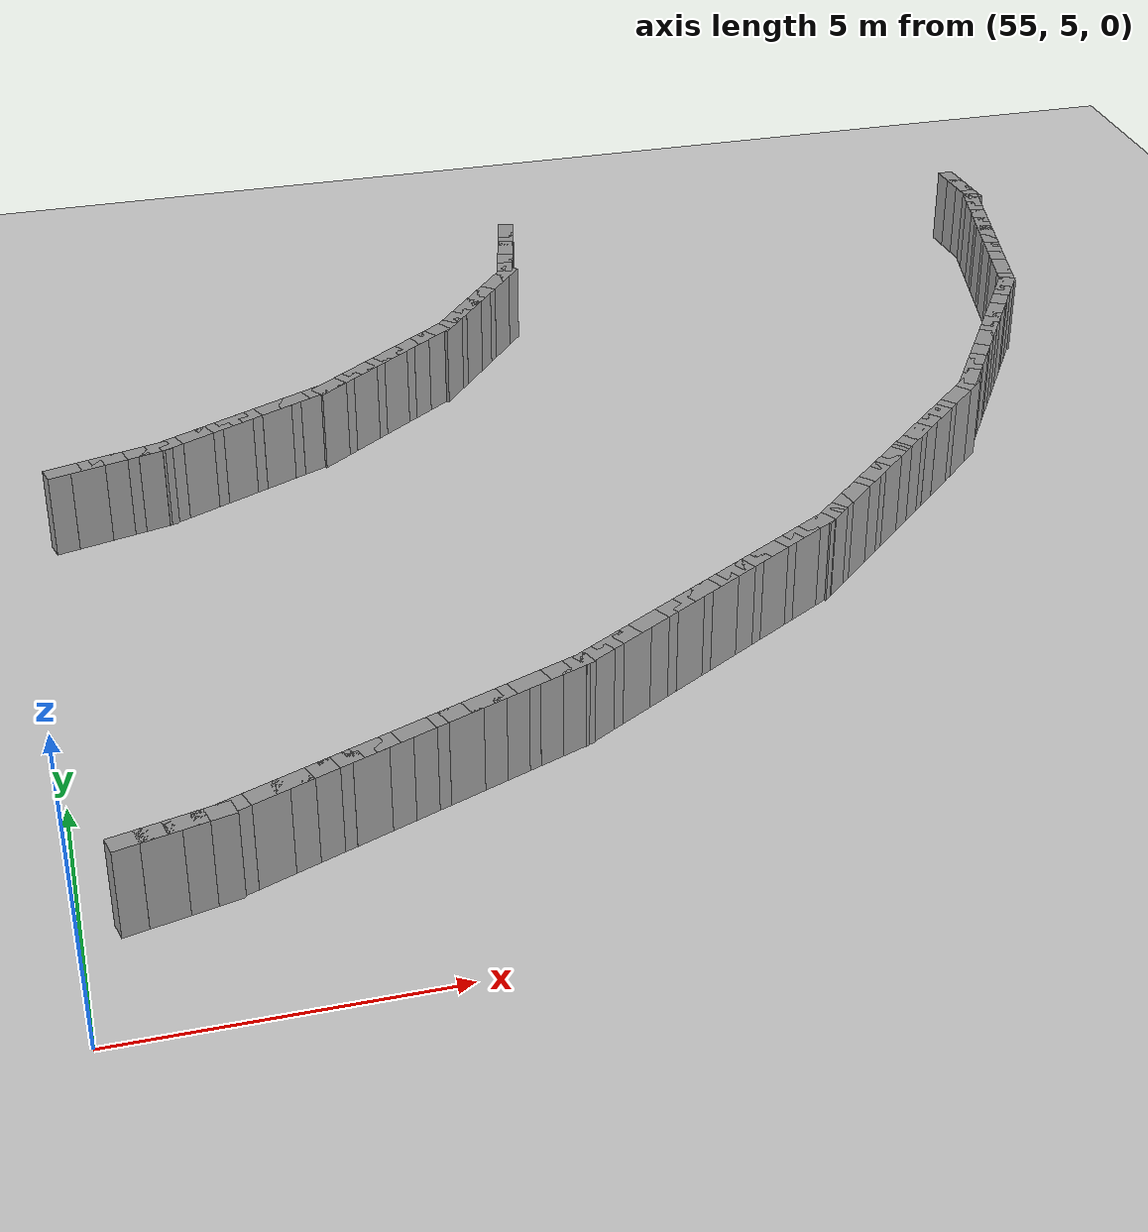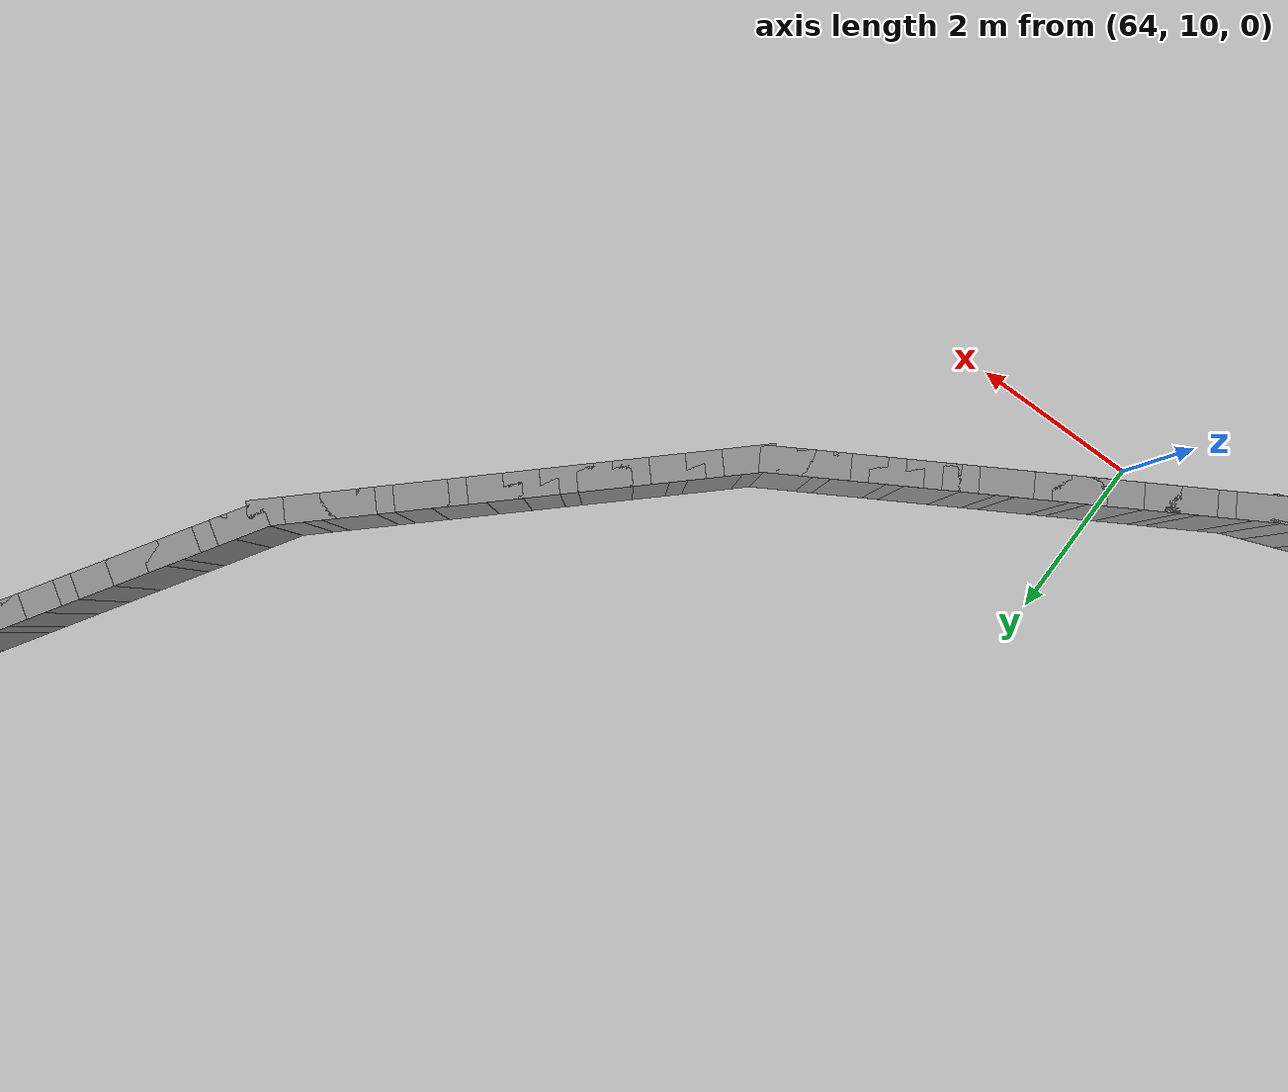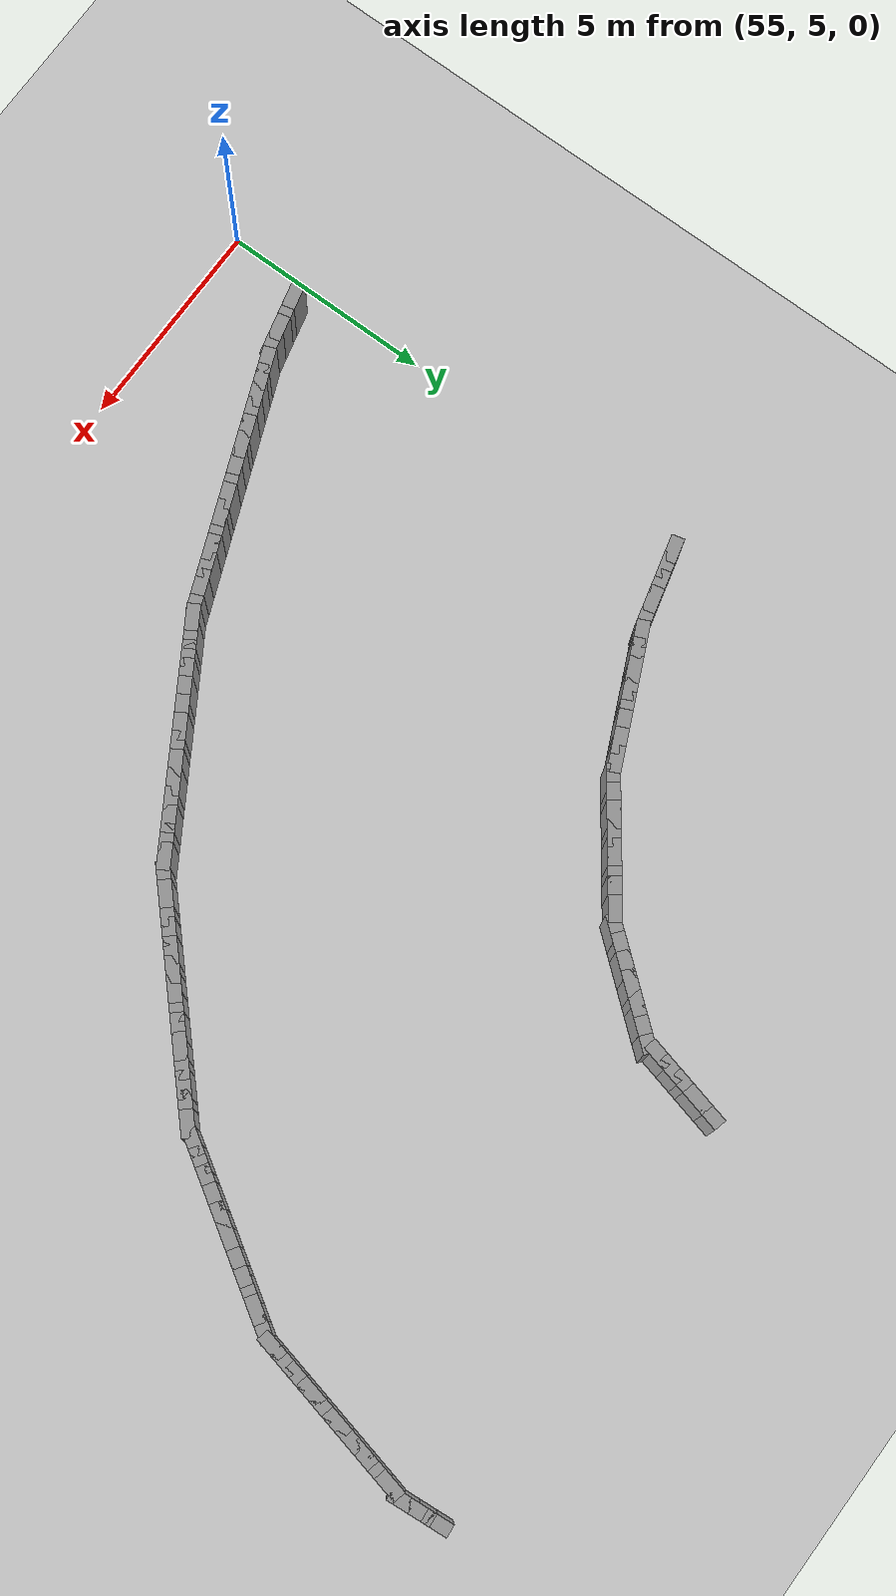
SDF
<sdf version="1.5">
 <world name="ellipse_loop">
  <include><uri>model://sun</uri></include>
  <include><uri>model://ground_plane</uri></include>
  <model name="curbL_156">
   <static>true</static>
   <pose>55.783 7.235 0.750 0 0 0.237</pose>
   <link name="link">
    <collision name="col"><geometry><box><size>0.600 0.300 1.500</size></box></geometry></collision>
    <visual name="vis">
     <geometry><box><size>0.600 0.300 1.500</size></box></geometry>
     <material><ambient>0.6 0.6 0.6 1</ambient><diffuse>0.6 0.6 0.6 1</diffuse></material>
    </visual>
   </link>
  </model>
  <model name="curbL_157">
   <static>true</static>
   <pose>56.172 7.328 0.750 0 0 0.237</pose>
   <link name="link">
    <collision name="col"><geometry><box><size>0.600 0.300 1.500</size></box></geometry></collision>
    <visual name="vis">
     <geometry><box><size>0.600 0.300 1.500</size></box></geometry>
     <material><ambient>0.6 0.6 0.6 1</ambient><diffuse>0.6 0.6 0.6 1</diffuse></material>
    </visual>
   </link>
  </model>
  <model name="curbL_158">
   <static>true</static>
   <pose>56.560 7.422 0.750 0 0 0.237</pose>
   <link name="link">
    <collision name="col"><geometry><box><size>0.600 0.300 1.500</size></box></geometry></collision>
    <visual name="vis">
     <geometry><box><size>0.600 0.300 1.500</size></box></geometry>
     <material><ambient>0.6 0.6 0.6 1</ambient><diffuse>0.6 0.6 0.6 1</diffuse></material>
    </visual>
   </link>
  </model>
  <model name="curbL_159">
   <static>true</static>
   <pose>56.949 7.516 0.750 0 0 0.237</pose>
   <link name="link">
    <collision name="col"><geometry><box><size>0.600 0.300 1.500</size></box></geometry></collision>
    <visual name="vis">
     <geometry><box><size>0.600 0.300 1.500</size></box></geometry>
     <material><ambient>0.6 0.6 0.6 1</ambient><diffuse>0.6 0.6 0.6 1</diffuse></material>
    </visual>
   </link>
  </model>
  <model name="curbL_160">
   <static>true</static>
   <pose>57.323 7.658 0.750 0 0 0.376</pose>
   <link name="link">
    <collision name="col"><geometry><box><size>0.600 0.300 1.500</size></box></geometry></collision>
    <visual name="vis">
     <geometry><box><size>0.600 0.300 1.500</size></box></geometry>
     <material><ambient>0.6 0.6 0.6 1</ambient><diffuse>0.6 0.6 0.6 1</diffuse></material>
    </visual>
   </link>
  </model>
  <model name="curbL_161">
   <static>true</static>
   <pose>57.695 7.804 0.750 0 0 0.376</pose>
   <link name="link">
    <collision name="col"><geometry><box><size>0.600 0.300 1.500</size></box></geometry></collision>
    <visual name="vis">
     <geometry><box><size>0.600 0.300 1.500</size></box></geometry>
     <material><ambient>0.6 0.6 0.6 1</ambient><diffuse>0.6 0.6 0.6 1</diffuse></material>
    </visual>
   </link>
  </model>
  <model name="curbL_162">
   <static>true</static>
   <pose>58.067 7.951 0.750 0 0 0.376</pose>
   <link name="link">
    <collision name="col"><geometry><box><size>0.600 0.300 1.500</size></box></geometry></collision>
    <visual name="vis">
     <geometry><box><size>0.600 0.300 1.500</size></box></geometry>
     <material><ambient>0.6 0.6 0.6 1</ambient><diffuse>0.6 0.6 0.6 1</diffuse></material>
    </visual>
   </link>
  </model>
  <model name="curbL_163">
   <static>true</static>
   <pose>58.439 8.098 0.750 0 0 0.376</pose>
   <link name="link">
    <collision name="col"><geometry><box><size>0.600 0.300 1.500</size></box></geometry></collision>
    <visual name="vis">
     <geometry><box><size>0.600 0.300 1.500</size></box></geometry>
     <material><ambient>0.6 0.6 0.6 1</ambient><diffuse>0.6 0.6 0.6 1</diffuse></material>
    </visual>
   </link>
  </model>
  <model name="curbL_164">
   <static>true</static>
   <pose>58.811 8.245 0.750 0 0 0.376</pose>
   <link name="link">
    <collision name="col"><geometry><box><size>0.600 0.300 1.500</size></box></geometry></collision>
    <visual name="vis">
     <geometry><box><size>0.600 0.300 1.500</size></box></geometry>
     <material><ambient>0.6 0.6 0.6 1</ambient><diffuse>0.6 0.6 0.6 1</diffuse></material>
    </visual>
   </link>
  </model>
  <model name="curbL_165">
   <static>true</static>
   <pose>59.184 8.391 0.750 0 0 0.376</pose>
   <link name="link">
    <collision name="col"><geometry><box><size>0.600 0.300 1.500</size></box></geometry></collision>
    <visual name="vis">
     <geometry><box><size>0.600 0.300 1.500</size></box></geometry>
     <material><ambient>0.6 0.6 0.6 1</ambient><diffuse>0.6 0.6 0.6 1</diffuse></material>
    </visual>
   </link>
  </model>
  <model name="curbL_166">
   <static>true</static>
   <pose>59.556 8.538 0.750 0 0 0.376</pose>
   <link name="link">
    <collision name="col"><geometry><box><size>0.600 0.300 1.500</size></box></geometry></collision>
    <visual name="vis">
     <geometry><box><size>0.600 0.300 1.500</size></box></geometry>
     <material><ambient>0.6 0.6 0.6 1</ambient><diffuse>0.6 0.6 0.6 1</diffuse></material>
    </visual>
   </link>
  </model>
  <model name="curbL_167">
   <static>true</static>
   <pose>59.928 8.685 0.750 0 0 0.376</pose>
   <link name="link">
    <collision name="col"><geometry><box><size>0.600 0.300 1.500</size></box></geometry></collision>
    <visual name="vis">
     <geometry><box><size>0.600 0.300 1.500</size></box></geometry>
     <material><ambient>0.6 0.6 0.6 1</ambient><diffuse>0.6 0.6 0.6 1</diffuse></material>
    </visual>
   </link>
  </model>
  <model name="curbL_168">
   <static>true</static>
   <pose>60.300 8.832 0.750 0 0 0.376</pose>
   <link name="link">
    <collision name="col"><geometry><box><size>0.600 0.300 1.500</size></box></geometry></collision>
    <visual name="vis">
     <geometry><box><size>0.600 0.300 1.500</size></box></geometry>
     <material><ambient>0.6 0.6 0.6 1</ambient><diffuse>0.6 0.6 0.6 1</diffuse></material>
    </visual>
   </link>
  </model>
  <model name="curbL_169">
   <static>true</static>
   <pose>60.672 8.978 0.750 0 0 0.376</pose>
   <link name="link">
    <collision name="col"><geometry><box><size>0.600 0.300 1.500</size></box></geometry></collision>
    <visual name="vis">
     <geometry><box><size>0.600 0.300 1.500</size></box></geometry>
     <material><ambient>0.6 0.6 0.6 1</ambient><diffuse>0.6 0.6 0.6 1</diffuse></material>
    </visual>
   </link>
  </model>
  <model name="curbL_170">
   <static>true</static>
   <pose>61.044 9.125 0.750 0 0 0.376</pose>
   <link name="link">
    <collision name="col"><geometry><box><size>0.600 0.300 1.500</size></box></geometry></collision>
    <visual name="vis">
     <geometry><box><size>0.600 0.300 1.500</size></box></geometry>
     <material><ambient>0.6 0.6 0.6 1</ambient><diffuse>0.6 0.6 0.6 1</diffuse></material>
    </visual>
   </link>
  </model>
  <model name="curbL_171">
   <static>true</static>
   <pose>61.416 9.272 0.750 0 0 0.376</pose>
   <link name="link">
    <collision name="col"><geometry><box><size>0.600 0.300 1.500</size></box></geometry></collision>
    <visual name="vis">
     <geometry><box><size>0.600 0.300 1.500</size></box></geometry>
     <material><ambient>0.6 0.6 0.6 1</ambient><diffuse>0.6 0.6 0.6 1</diffuse></material>
    </visual>
   </link>
  </model>
  <model name="curbL_172">
   <static>true</static>
   <pose>61.788 9.419 0.750 0 0 0.376</pose>
   <link name="link">
    <collision name="col"><geometry><box><size>0.600 0.300 1.500</size></box></geometry></collision>
    <visual name="vis">
     <geometry><box><size>0.600 0.300 1.500</size></box></geometry>
     <material><ambient>0.6 0.6 0.6 1</ambient><diffuse>0.6 0.6 0.6 1</diffuse></material>
    </visual>
   </link>
  </model>
  <model name="curbL_173">
   <static>true</static>
   <pose>62.160 9.565 0.750 0 0 0.376</pose>
   <link name="link">
    <collision name="col"><geometry><box><size>0.600 0.300 1.500</size></box></geometry></collision>
    <visual name="vis">
     <geometry><box><size>0.600 0.300 1.500</size></box></geometry>
     <material><ambient>0.6 0.6 0.6 1</ambient><diffuse>0.6 0.6 0.6 1</diffuse></material>
    </visual>
   </link>
  </model>
  <model name="curbL_174">
   <static>true</static>
   <pose>62.533 9.712 0.750 0 0 0.376</pose>
   <link name="link">
    <collision name="col"><geometry><box><size>0.600 0.300 1.500</size></box></geometry></collision>
    <visual name="vis">
     <geometry><box><size>0.600 0.300 1.500</size></box></geometry>
     <material><ambient>0.6 0.6 0.6 1</ambient><diffuse>0.6 0.6 0.6 1</diffuse></material>
    </visual>
   </link>
  </model>
  <model name="curbL_175">
   <static>true</static>
   <pose>62.889 9.891 0.750 0 0 0.540</pose>
   <link name="link">
    <collision name="col"><geometry><box><size>0.600 0.300 1.500</size></box></geometry></collision>
    <visual name="vis">
     <geometry><box><size>0.600 0.300 1.500</size></box></geometry>
     <material><ambient>0.6 0.6 0.6 1</ambient><diffuse>0.6 0.6 0.6 1</diffuse></material>
    </visual>
   </link>
  </model>
  <model name="curbL_176">
   <static>true</static>
   <pose>63.232 10.097 0.750 0 0 0.540</pose>
   <link name="link">
    <collision name="col"><geometry><box><size>0.600 0.300 1.500</size></box></geometry></collision>
    <visual name="vis">
     <geometry><box><size>0.600 0.300 1.500</size></box></geometry>
     <material><ambient>0.6 0.6 0.6 1</ambient><diffuse>0.6 0.6 0.6 1</diffuse></material>
    </visual>
   </link>
  </model>
  <model name="curbL_177">
   <static>true</static>
   <pose>63.575 10.302 0.750 0 0 0.540</pose>
   <link name="link">
    <collision name="col"><geometry><box><size>0.600 0.300 1.500</size></box></geometry></collision>
    <visual name="vis">
     <geometry><box><size>0.600 0.300 1.500</size></box></geometry>
     <material><ambient>0.6 0.6 0.6 1</ambient><diffuse>0.6 0.6 0.6 1</diffuse></material>
    </visual>
   </link>
  </model>
  <model name="curbL_178">
   <static>true</static>
   <pose>63.918 10.508 0.750 0 0 0.540</pose>
   <link name="link">
    <collision name="col"><geometry><box><size>0.600 0.300 1.500</size></box></geometry></collision>
    <visual name="vis">
     <geometry><box><size>0.600 0.300 1.500</size></box></geometry>
     <material><ambient>0.6 0.6 0.6 1</ambient><diffuse>0.6 0.6 0.6 1</diffuse></material>
    </visual>
   </link>
  </model>
  <model name="curbL_179">
   <static>true</static>
   <pose>64.261 10.714 0.750 0 0 0.540</pose>
   <link name="link">
    <collision name="col"><geometry><box><size>0.600 0.300 1.500</size></box></geometry></collision>
    <visual name="vis">
     <geometry><box><size>0.600 0.300 1.500</size></box></geometry>
     <material><ambient>0.6 0.6 0.6 1</ambient><diffuse>0.6 0.6 0.6 1</diffuse></material>
    </visual>
   </link>
  </model>
  <model name="curbL_180">
   <static>true</static>
   <pose>64.604 10.919 0.750 0 0 0.540</pose>
   <link name="link">
    <collision name="col"><geometry><box><size>0.600 0.300 1.500</size></box></geometry></collision>
    <visual name="vis">
     <geometry><box><size>0.600 0.300 1.500</size></box></geometry>
     <material><ambient>0.6 0.6 0.6 1</ambient><diffuse>0.6 0.6 0.6 1</diffuse></material>
    </visual>
   </link>
  </model>
  <model name="curbL_181">
   <static>true</static>
   <pose>64.947 11.125 0.750 0 0 0.540</pose>
   <link name="link">
    <collision name="col"><geometry><box><size>0.600 0.300 1.500</size></box></geometry></collision>
    <visual name="vis">
     <geometry><box><size>0.600 0.300 1.500</size></box></geometry>
     <material><ambient>0.6 0.6 0.6 1</ambient><diffuse>0.6 0.6 0.6 1</diffuse></material>
    </visual>
   </link>
  </model>
  <model name="curbL_182">
   <static>true</static>
   <pose>65.291 11.330 0.750 0 0 0.540</pose>
   <link name="link">
    <collision name="col"><geometry><box><size>0.600 0.300 1.500</size></box></geometry></collision>
    <visual name="vis">
     <geometry><box><size>0.600 0.300 1.500</size></box></geometry>
     <material><ambient>0.6 0.6 0.6 1</ambient><diffuse>0.6 0.6 0.6 1</diffuse></material>
    </visual>
   </link>
  </model>
  <model name="curbL_183">
   <static>true</static>
   <pose>65.634 11.536 0.750 0 0 0.540</pose>
   <link name="link">
    <collision name="col"><geometry><box><size>0.600 0.300 1.500</size></box></geometry></collision>
    <visual name="vis">
     <geometry><box><size>0.600 0.300 1.500</size></box></geometry>
     <material><ambient>0.6 0.6 0.6 1</ambient><diffuse>0.6 0.6 0.6 1</diffuse></material>
    </visual>
   </link>
  </model>
  <model name="curbL_184">
   <static>true</static>
   <pose>65.977 11.742 0.750 0 0 0.540</pose>
   <link name="link">
    <collision name="col"><geometry><box><size>0.600 0.300 1.500</size></box></geometry></collision>
    <visual name="vis">
     <geometry><box><size>0.600 0.300 1.500</size></box></geometry>
     <material><ambient>0.6 0.6 0.6 1</ambient><diffuse>0.6 0.6 0.6 1</diffuse></material>
    </visual>
   </link>
  </model>
  <model name="curbL_185">
   <static>true</static>
   <pose>66.320 11.947 0.750 0 0 0.540</pose>
   <link name="link">
    <collision name="col"><geometry><box><size>0.600 0.300 1.500</size></box></geometry></collision>
    <visual name="vis">
     <geometry><box><size>0.600 0.300 1.500</size></box></geometry>
     <material><ambient>0.6 0.6 0.6 1</ambient><diffuse>0.6 0.6 0.6 1</diffuse></material>
    </visual>
   </link>
  </model>
  <model name="curbL_186">
   <static>true</static>
   <pose>66.663 12.153 0.750 0 0 0.540</pose>
   <link name="link">
    <collision name="col"><geometry><box><size>0.600 0.300 1.500</size></box></geometry></collision>
    <visual name="vis">
     <geometry><box><size>0.600 0.300 1.500</size></box></geometry>
     <material><ambient>0.6 0.6 0.6 1</ambient><diffuse>0.6 0.6 0.6 1</diffuse></material>
    </visual>
   </link>
  </model>
  <model name="curbL_187">
   <static>true</static>
   <pose>67.006 12.358 0.750 0 0 0.540</pose>
   <link name="link">
    <collision name="col"><geometry><box><size>0.600 0.300 1.500</size></box></geometry></collision>
    <visual name="vis">
     <geometry><box><size>0.600 0.300 1.500</size></box></geometry>
     <material><ambient>0.6 0.6 0.6 1</ambient><diffuse>0.6 0.6 0.6 1</diffuse></material>
    </visual>
   </link>
  </model>
  <model name="curbL_188">
   <static>true</static>
   <pose>67.349 12.564 0.750 0 0 0.540</pose>
   <link name="link">
    <collision name="col"><geometry><box><size>0.600 0.300 1.500</size></box></geometry></collision>
    <visual name="vis">
     <geometry><box><size>0.600 0.300 1.500</size></box></geometry>
     <material><ambient>0.6 0.6 0.6 1</ambient><diffuse>0.6 0.6 0.6 1</diffuse></material>
    </visual>
   </link>
  </model>
  <model name="curbL_189">
   <static>true</static>
   <pose>67.675 12.793 0.750 0 0 0.748</pose>
   <link name="link">
    <collision name="col"><geometry><box><size>0.600 0.300 1.500</size></box></geometry></collision>
    <visual name="vis">
     <geometry><box><size>0.600 0.300 1.500</size></box></geometry>
     <material><ambient>0.6 0.6 0.6 1</ambient><diffuse>0.6 0.6 0.6 1</diffuse></material>
    </visual>
   </link>
  </model>
  <model name="curbL_190">
   <static>true</static>
   <pose>67.968 13.065 0.750 0 0 0.748</pose>
   <link name="link">
    <collision name="col"><geometry><box><size>0.600 0.300 1.500</size></box></geometry></collision>
    <visual name="vis">
     <geometry><box><size>0.600 0.300 1.500</size></box></geometry>
     <material><ambient>0.6 0.6 0.6 1</ambient><diffuse>0.6 0.6 0.6 1</diffuse></material>
    </visual>
   </link>
  </model>
  <model name="curbL_191">
   <static>true</static>
   <pose>68.262 13.337 0.750 0 0 0.748</pose>
   <link name="link">
    <collision name="col"><geometry><box><size>0.600 0.300 1.500</size></box></geometry></collision>
    <visual name="vis">
     <geometry><box><size>0.600 0.300 1.500</size></box></geometry>
     <material><ambient>0.6 0.6 0.6 1</ambient><diffuse>0.6 0.6 0.6 1</diffuse></material>
    </visual>
   </link>
  </model>
  <model name="curbL_192">
   <static>true</static>
   <pose>68.555 13.609 0.750 0 0 0.748</pose>
   <link name="link">
    <collision name="col"><geometry><box><size>0.600 0.300 1.500</size></box></geometry></collision>
    <visual name="vis">
     <geometry><box><size>0.600 0.300 1.500</size></box></geometry>
     <material><ambient>0.6 0.6 0.6 1</ambient><diffuse>0.6 0.6 0.6 1</diffuse></material>
    </visual>
   </link>
  </model>
  <model name="curbL_193">
   <static>true</static>
   <pose>68.848 13.881 0.750 0 0 0.748</pose>
   <link name="link">
    <collision name="col"><geometry><box><size>0.600 0.300 1.500</size></box></geometry></collision>
    <visual name="vis">
     <geometry><box><size>0.600 0.300 1.500</size></box></geometry>
     <material><ambient>0.6 0.6 0.6 1</ambient><diffuse>0.6 0.6 0.6 1</diffuse></material>
    </visual>
   </link>
  </model>
  <model name="curbL_194">
   <static>true</static>
   <pose>69.142 14.153 0.750 0 0 0.748</pose>
   <link name="link">
    <collision name="col"><geometry><box><size>0.600 0.300 1.500</size></box></geometry></collision>
    <visual name="vis">
     <geometry><box><size>0.600 0.300 1.500</size></box></geometry>
     <material><ambient>0.6 0.6 0.6 1</ambient><diffuse>0.6 0.6 0.6 1</diffuse></material>
    </visual>
   </link>
  </model>
  <model name="curbL_195">
   <static>true</static>
   <pose>69.435 14.425 0.750 0 0 0.748</pose>
   <link name="link">
    <collision name="col"><geometry><box><size>0.600 0.300 1.500</size></box></geometry></collision>
    <visual name="vis">
     <geometry><box><size>0.600 0.300 1.500</size></box></geometry>
     <material><ambient>0.6 0.6 0.6 1</ambient><diffuse>0.6 0.6 0.6 1</diffuse></material>
    </visual>
   </link>
  </model>
  <model name="curbL_196">
   <static>true</static>
   <pose>69.728 14.697 0.750 0 0 0.748</pose>
   <link name="link">
    <collision name="col"><geometry><box><size>0.600 0.300 1.500</size></box></geometry></collision>
    <visual name="vis">
     <geometry><box><size>0.600 0.300 1.500</size></box></geometry>
     <material><ambient>0.6 0.6 0.6 1</ambient><diffuse>0.6 0.6 0.6 1</diffuse></material>
    </visual>
   </link>
  </model>
  <model name="curbL_197">
   <static>true</static>
   <pose>70.021 14.969 0.750 0 0 0.748</pose>
   <link name="link">
    <collision name="col"><geometry><box><size>0.600 0.300 1.500</size></box></geometry></collision>
    <visual name="vis">
     <geometry><box><size>0.600 0.300 1.500</size></box></geometry>
     <material><ambient>0.6 0.6 0.6 1</ambient><diffuse>0.6 0.6 0.6 1</diffuse></material>
    </visual>
   </link>
  </model>
  <model name="curbL_198">
   <static>true</static>
   <pose>70.315 15.241 0.750 0 0 0.748</pose>
   <link name="link">
    <collision name="col"><geometry><box><size>0.600 0.300 1.500</size></box></geometry></collision>
    <visual name="vis">
     <geometry><box><size>0.600 0.300 1.500</size></box></geometry>
     <material><ambient>0.6 0.6 0.6 1</ambient><diffuse>0.6 0.6 0.6 1</diffuse></material>
    </visual>
   </link>
  </model>
  <model name="curbL_199">
   <static>true</static>
   <pose>70.608 15.512 0.750 0 0 0.748</pose>
   <link name="link">
    <collision name="col"><geometry><box><size>0.600 0.300 1.500</size></box></geometry></collision>
    <visual name="vis">
     <geometry><box><size>0.600 0.300 1.500</size></box></geometry>
     <material><ambient>0.6 0.6 0.6 1</ambient><diffuse>0.6 0.6 0.6 1</diffuse></material>
    </visual>
   </link>
  </model>
  <model name="curbL_200">
   <static>true</static>
   <pose>70.901 15.784 0.750 0 0 0.748</pose>
   <link name="link">
    <collision name="col"><geometry><box><size>0.600 0.300 1.500</size></box></geometry></collision>
    <visual name="vis">
     <geometry><box><size>0.600 0.300 1.500</size></box></geometry>
     <material><ambient>0.6 0.6 0.6 1</ambient><diffuse>0.6 0.6 0.6 1</diffuse></material>
    </visual>
   </link>
  </model>
  <model name="curbL_201">
   <static>true</static>
   <pose>71.195 16.056 0.750 0 0 0.748</pose>
   <link name="link">
    <collision name="col"><geometry><box><size>0.600 0.300 1.500</size></box></geometry></collision>
    <visual name="vis">
     <geometry><box><size>0.600 0.300 1.500</size></box></geometry>
     <material><ambient>0.6 0.6 0.6 1</ambient><diffuse>0.6 0.6 0.6 1</diffuse></material>
    </visual>
   </link>
  </model>
  <model name="curbL_202">
   <static>true</static>
   <pose>71.488 16.328 0.750 0 0 0.748</pose>
   <link name="link">
    <collision name="col"><geometry><box><size>0.600 0.300 1.500</size></box></geometry></collision>
    <visual name="vis">
     <geometry><box><size>0.600 0.300 1.500</size></box></geometry>
     <material><ambient>0.6 0.6 0.6 1</ambient><diffuse>0.6 0.6 0.6 1</diffuse></material>
    </visual>
   </link>
  </model>
  <model name="curbL_203">
   <static>true</static>
   <pose>71.715 16.655 0.750 0 0 1.009</pose>
   <link name="link">
    <collision name="col"><geometry><box><size>0.600 0.300 1.500</size></box></geometry></collision>
    <visual name="vis">
     <geometry><box><size>0.600 0.300 1.500</size></box></geometry>
     <material><ambient>0.6 0.6 0.6 1</ambient><diffuse>0.6 0.6 0.6 1</diffuse></material>
    </visual>
   </link>
  </model>
  <model name="curbL_204">
   <static>true</static>
   <pose>71.928 16.994 0.750 0 0 1.009</pose>
   <link name="link">
    <collision name="col"><geometry><box><size>0.600 0.300 1.500</size></box></geometry></collision>
    <visual name="vis">
     <geometry><box><size>0.600 0.300 1.500</size></box></geometry>
     <material><ambient>0.6 0.6 0.6 1</ambient><diffuse>0.6 0.6 0.6 1</diffuse></material>
    </visual>
   </link>
  </model>
  <model name="curbL_205">
   <static>true</static>
   <pose>72.142 17.332 0.750 0 0 1.009</pose>
   <link name="link">
    <collision name="col"><geometry><box><size>0.600 0.300 1.500</size></box></geometry></collision>
    <visual name="vis">
     <geometry><box><size>0.600 0.300 1.500</size></box></geometry>
     <material><ambient>0.6 0.6 0.6 1</ambient><diffuse>0.6 0.6 0.6 1</diffuse></material>
    </visual>
   </link>
  </model>
  <model name="curbL_206">
   <static>true</static>
   <pose>72.355 17.671 0.750 0 0 1.009</pose>
   <link name="link">
    <collision name="col"><geometry><box><size>0.600 0.300 1.500</size></box></geometry></collision>
    <visual name="vis">
     <geometry><box><size>0.600 0.300 1.500</size></box></geometry>
     <material><ambient>0.6 0.6 0.6 1</ambient><diffuse>0.6 0.6 0.6 1</diffuse></material>
    </visual>
   </link>
  </model>
  <model name="curbL_207">
   <static>true</static>
   <pose>72.568 18.009 0.750 0 0 1.009</pose>
   <link name="link">
    <collision name="col"><geometry><box><size>0.600 0.300 1.500</size></box></geometry></collision>
    <visual name="vis">
     <geometry><box><size>0.600 0.300 1.500</size></box></geometry>
     <material><ambient>0.6 0.6 0.6 1</ambient><diffuse>0.6 0.6 0.6 1</diffuse></material>
    </visual>
   </link>
  </model>
  <model name="curbL_208">
   <static>true</static>
   <pose>72.781 18.347 0.750 0 0 1.009</pose>
   <link name="link">
    <collision name="col"><geometry><box><size>0.600 0.300 1.500</size></box></geometry></collision>
    <visual name="vis">
     <geometry><box><size>0.600 0.300 1.500</size></box></geometry>
     <material><ambient>0.6 0.6 0.6 1</ambient><diffuse>0.6 0.6 0.6 1</diffuse></material>
    </visual>
   </link>
  </model>
  <model name="curbL_209">
   <static>true</static>
   <pose>72.995 18.686 0.750 0 0 1.009</pose>
   <link name="link">
    <collision name="col"><geometry><box><size>0.600 0.300 1.500</size></box></geometry></collision>
    <visual name="vis">
     <geometry><box><size>0.600 0.300 1.500</size></box></geometry>
     <material><ambient>0.6 0.6 0.6 1</ambient><diffuse>0.6 0.6 0.6 1</diffuse></material>
    </visual>
   </link>
  </model>
  <model name="curbL_210">
   <static>true</static>
   <pose>73.208 19.024 0.750 0 0 1.009</pose>
   <link name="link">
    <collision name="col"><geometry><box><size>0.600 0.300 1.500</size></box></geometry></collision>
    <visual name="vis">
     <geometry><box><size>0.600 0.300 1.500</size></box></geometry>
     <material><ambient>0.6 0.6 0.6 1</ambient><diffuse>0.6 0.6 0.6 1</diffuse></material>
    </visual>
   </link>
  </model>
  <model name="curbL_211">
   <static>true</static>
   <pose>73.421 19.363 0.750 0 0 1.009</pose>
   <link name="link">
    <collision name="col"><geometry><box><size>0.600 0.300 1.500</size></box></geometry></collision>
    <visual name="vis">
     <geometry><box><size>0.600 0.300 1.500</size></box></geometry>
     <material><ambient>0.6 0.6 0.6 1</ambient><diffuse>0.6 0.6 0.6 1</diffuse></material>
    </visual>
   </link>
  </model>
  <model name="curbL_212">
   <static>true</static>
   <pose>73.634 19.701 0.750 0 0 1.009</pose>
   <link name="link">
    <collision name="col"><geometry><box><size>0.600 0.300 1.500</size></box></geometry></collision>
    <visual name="vis">
     <geometry><box><size>0.600 0.300 1.500</size></box></geometry>
     <material><ambient>0.6 0.6 0.6 1</ambient><diffuse>0.6 0.6 0.6 1</diffuse></material>
    </visual>
   </link>
  </model>
  <model name="curbL_213">
   <static>true</static>
   <pose>73.848 20.040 0.750 0 0 1.009</pose>
   <link name="link">
    <collision name="col"><geometry><box><size>0.600 0.300 1.500</size></box></geometry></collision>
    <visual name="vis">
     <geometry><box><size>0.600 0.300 1.500</size></box></geometry>
     <material><ambient>0.6 0.6 0.6 1</ambient><diffuse>0.6 0.6 0.6 1</diffuse></material>
    </visual>
   </link>
  </model>
  <model name="curbL_214">
   <static>true</static>
   <pose>74.006 20.401 0.750 0 0 1.353</pose>
   <link name="link">
    <collision name="col"><geometry><box><size>0.600 0.300 1.500</size></box></geometry></collision>
    <visual name="vis">
     <geometry><box><size>0.600 0.300 1.500</size></box></geometry>
     <material><ambient>0.6 0.6 0.6 1</ambient><diffuse>0.6 0.6 0.6 1</diffuse></material>
    </visual>
   </link>
  </model>
  <model name="curbL_215">
   <static>true</static>
   <pose>74.092 20.791 0.750 0 0 1.353</pose>
   <link name="link">
    <collision name="col"><geometry><box><size>0.600 0.300 1.500</size></box></geometry></collision>
    <visual name="vis">
     <geometry><box><size>0.600 0.300 1.500</size></box></geometry>
     <material><ambient>0.6 0.6 0.6 1</ambient><diffuse>0.6 0.6 0.6 1</diffuse></material>
    </visual>
   </link>
  </model>
  <model name="curbL_216">
   <static>true</static>
   <pose>74.179 21.182 0.750 0 0 1.353</pose>
   <link name="link">
    <collision name="col"><geometry><box><size>0.600 0.300 1.500</size></box></geometry></collision>
    <visual name="vis">
     <geometry><box><size>0.600 0.300 1.500</size></box></geometry>
     <material><ambient>0.6 0.6 0.6 1</ambient><diffuse>0.6 0.6 0.6 1</diffuse></material>
    </visual>
   </link>
  </model>
  <model name="curbL_217">
   <static>true</static>
   <pose>74.265 21.572 0.750 0 0 1.353</pose>
   <link name="link">
    <collision name="col"><geometry><box><size>0.600 0.300 1.500</size></box></geometry></collision>
    <visual name="vis">
     <geometry><box><size>0.600 0.300 1.500</size></box></geometry>
     <material><ambient>0.6 0.6 0.6 1</ambient><diffuse>0.6 0.6 0.6 1</diffuse></material>
    </visual>
   </link>
  </model>
  <model name="curbL_218">
   <static>true</static>
   <pose>74.352 21.963 0.750 0 0 1.353</pose>
   <link name="link">
    <collision name="col"><geometry><box><size>0.600 0.300 1.500</size></box></geometry></collision>
    <visual name="vis">
     <geometry><box><size>0.600 0.300 1.500</size></box></geometry>
     <material><ambient>0.6 0.6 0.6 1</ambient><diffuse>0.6 0.6 0.6 1</diffuse></material>
    </visual>
   </link>
  </model>
  <model name="curbL_219">
   <static>true</static>
   <pose>74.438 22.353 0.750 0 0 1.353</pose>
   <link name="link">
    <collision name="col"><geometry><box><size>0.600 0.300 1.500</size></box></geometry></collision>
    <visual name="vis">
     <geometry><box><size>0.600 0.300 1.500</size></box></geometry>
     <material><ambient>0.6 0.6 0.6 1</ambient><diffuse>0.6 0.6 0.6 1</diffuse></material>
    </visual>
   </link>
  </model>
  <model name="curbL_220">
   <static>true</static>
   <pose>74.525 22.744 0.750 0 0 1.353</pose>
   <link name="link">
    <collision name="col"><geometry><box><size>0.600 0.300 1.500</size></box></geometry></collision>
    <visual name="vis">
     <geometry><box><size>0.600 0.300 1.500</size></box></geometry>
     <material><ambient>0.6 0.6 0.6 1</ambient><diffuse>0.6 0.6 0.6 1</diffuse></material>
    </visual>
   </link>
  </model>
  <model name="curbL_221">
   <static>true</static>
   <pose>74.611 23.134 0.750 0 0 1.353</pose>
   <link name="link">
    <collision name="col"><geometry><box><size>0.600 0.300 1.500</size></box></geometry></collision>
    <visual name="vis">
     <geometry><box><size>0.600 0.300 1.500</size></box></geometry>
     <material><ambient>0.6 0.6 0.6 1</ambient><diffuse>0.6 0.6 0.6 1</diffuse></material>
    </visual>
   </link>
  </model>
  <model name="curbL_222">
   <static>true</static>
   <pose>74.697 23.525 0.750 0 0 1.353</pose>
   <link name="link">
    <collision name="col"><geometry><box><size>0.600 0.300 1.500</size></box></geometry></collision>
    <visual name="vis">
     <geometry><box><size>0.600 0.300 1.500</size></box></geometry>
     <material><ambient>0.6 0.6 0.6 1</ambient><diffuse>0.6 0.6 0.6 1</diffuse></material>
    </visual>
   </link>
  </model>
  <model name="curbL_223">
   <static>true</static>
   <pose>74.784 23.915 0.750 0 0 1.353</pose>
   <link name="link">
    <collision name="col"><geometry><box><size>0.600 0.300 1.500</size></box></geometry></collision>
    <visual name="vis">
     <geometry><box><size>0.600 0.300 1.500</size></box></geometry>
     <material><ambient>0.6 0.6 0.6 1</ambient><diffuse>0.6 0.6 0.6 1</diffuse></material>
    </visual>
   </link>
  </model>
  <model name="curbL_224">
   <static>true</static>
   <pose>74.868 24.306 0.750 0 0 1.659</pose>
   <link name="link">
    <collision name="col"><geometry><box><size>0.600 0.300 1.500</size></box></geometry></collision>
    <visual name="vis">
     <geometry><box><size>0.600 0.300 1.500</size></box></geometry>
     <material><ambient>0.6 0.6 0.6 1</ambient><diffuse>0.6 0.6 0.6 1</diffuse></material>
    </visual>
   </link>
  </model>
  <model name="curbL_225">
   <static>true</static>
   <pose>74.833 24.705 0.750 0 0 1.659</pose>
   <link name="link">
    <collision name="col"><geometry><box><size>0.600 0.300 1.500</size></box></geometry></collision>
    <visual name="vis">
     <geometry><box><size>0.600 0.300 1.500</size></box></geometry>
     <material><ambient>0.6 0.6 0.6 1</ambient><diffuse>0.6 0.6 0.6 1</diffuse></material>
    </visual>
   </link>
  </model>
  <model name="curbL_226">
   <static>true</static>
   <pose>74.798 25.103 0.750 0 0 1.659</pose>
   <link name="link">
    <collision name="col"><geometry><box><size>0.600 0.300 1.500</size></box></geometry></collision>
    <visual name="vis">
     <geometry><box><size>0.600 0.300 1.500</size></box></geometry>
     <material><ambient>0.6 0.6 0.6 1</ambient><diffuse>0.6 0.6 0.6 1</diffuse></material>
    </visual>
   </link>
  </model>
  <model name="curbR_144">
   <static>true</static>
   <pose>64.972 24.812 0.750 0 0 -1.808</pose>
   <link name="link">
    <collision name="col"><geometry><box><size>0.600 0.300 1.500</size></box></geometry></collision>
    <visual name="vis">
     <geometry><box><size>0.600 0.300 1.500</size></box></geometry>
     <material><ambient>0.6 0.6 0.6 1</ambient><diffuse>0.6 0.6 0.6 1</diffuse></material>
    </visual>
   </link>
  </model>
  <model name="curbR_145">
   <static>true</static>
   <pose>64.878 24.423 0.750 0 0 -1.808</pose>
   <link name="link">
    <collision name="col"><geometry><box><size>0.600 0.300 1.500</size></box></geometry></collision>
    <visual name="vis">
     <geometry><box><size>0.600 0.300 1.500</size></box></geometry>
     <material><ambient>0.6 0.6 0.6 1</ambient><diffuse>0.6 0.6 0.6 1</diffuse></material>
    </visual>
   </link>
  </model>
  <model name="curbR_146">
   <static>true</static>
   <pose>64.784 24.035 0.750 0 0 -1.808</pose>
   <link name="link">
    <collision name="col"><geometry><box><size>0.600 0.300 1.500</size></box></geometry></collision>
    <visual name="vis">
     <geometry><box><size>0.600 0.300 1.500</size></box></geometry>
     <material><ambient>0.6 0.6 0.6 1</ambient><diffuse>0.6 0.6 0.6 1</diffuse></material>
    </visual>
   </link>
  </model>
  <model name="curbR_147">
   <static>true</static>
   <pose>64.690 23.646 0.750 0 0 -1.808</pose>
   <link name="link">
    <collision name="col"><geometry><box><size>0.600 0.300 1.500</size></box></geometry></collision>
    <visual name="vis">
     <geometry><box><size>0.600 0.300 1.500</size></box></geometry>
     <material><ambient>0.6 0.6 0.6 1</ambient><diffuse>0.6 0.6 0.6 1</diffuse></material>
    </visual>
   </link>
  </model>
  <model name="curbR_148">
   <static>true</static>
   <pose>64.596 23.257 0.750 0 0 -1.808</pose>
   <link name="link">
    <collision name="col"><geometry><box><size>0.600 0.300 1.500</size></box></geometry></collision>
    <visual name="vis">
     <geometry><box><size>0.600 0.300 1.500</size></box></geometry>
     <material><ambient>0.6 0.6 0.6 1</ambient><diffuse>0.6 0.6 0.6 1</diffuse></material>
    </visual>
   </link>
  </model>
  <model name="curbR_149">
   <static>true</static>
   <pose>64.495 22.872 0.750 0 0 -2.257</pose>
   <link name="link">
    <collision name="col"><geometry><box><size>0.600 0.300 1.500</size></box></geometry></collision>
    <visual name="vis">
     <geometry><box><size>0.600 0.300 1.500</size></box></geometry>
     <material><ambient>0.6 0.6 0.6 1</ambient><diffuse>0.6 0.6 0.6 1</diffuse></material>
    </visual>
   </link>
  </model>
  <model name="curbR_150">
   <static>true</static>
   <pose>64.242 22.562 0.750 0 0 -2.257</pose>
   <link name="link">
    <collision name="col"><geometry><box><size>0.600 0.300 1.500</size></box></geometry></collision>
    <visual name="vis">
     <geometry><box><size>0.600 0.300 1.500</size></box></geometry>
     <material><ambient>0.6 0.6 0.6 1</ambient><diffuse>0.6 0.6 0.6 1</diffuse></material>
    </visual>
   </link>
  </model>
  <model name="curbR_151">
   <static>true</static>
   <pose>63.988 22.252 0.750 0 0 -2.257</pose>
   <link name="link">
    <collision name="col"><geometry><box><size>0.600 0.300 1.500</size></box></geometry></collision>
    <visual name="vis">
     <geometry><box><size>0.600 0.300 1.500</size></box></geometry>
     <material><ambient>0.6 0.6 0.6 1</ambient><diffuse>0.6 0.6 0.6 1</diffuse></material>
    </visual>
   </link>
  </model>
  <model name="curbR_152">
   <static>true</static>
   <pose>63.735 21.943 0.750 0 0 -2.257</pose>
   <link name="link">
    <collision name="col"><geometry><box><size>0.600 0.300 1.500</size></box></geometry></collision>
    <visual name="vis">
     <geometry><box><size>0.600 0.300 1.500</size></box></geometry>
     <material><ambient>0.6 0.6 0.6 1</ambient><diffuse>0.6 0.6 0.6 1</diffuse></material>
    </visual>
   </link>
  </model>
  <model name="curbR_153">
   <static>true</static>
   <pose>63.482 21.633 0.750 0 0 -2.257</pose>
   <link name="link">
    <collision name="col"><geometry><box><size>0.600 0.300 1.500</size></box></geometry></collision>
    <visual name="vis">
     <geometry><box><size>0.600 0.300 1.500</size></box></geometry>
     <material><ambient>0.6 0.6 0.6 1</ambient><diffuse>0.6 0.6 0.6 1</diffuse></material>
    </visual>
   </link>
  </model>
  <model name="curbR_154">
   <static>true</static>
   <pose>63.228 21.324 0.750 0 0 -2.257</pose>
   <link name="link">
    <collision name="col"><geometry><box><size>0.600 0.300 1.500</size></box></geometry></collision>
    <visual name="vis">
     <geometry><box><size>0.600 0.300 1.500</size></box></geometry>
     <material><ambient>0.6 0.6 0.6 1</ambient><diffuse>0.6 0.6 0.6 1</diffuse></material>
    </visual>
   </link>
  </model>
  <model name="curbR_155">
   <static>true</static>
   <pose>62.975 21.014 0.750 0 0 -2.257</pose>
   <link name="link">
    <collision name="col"><geometry><box><size>0.600 0.300 1.500</size></box></geometry></collision>
    <visual name="vis">
     <geometry><box><size>0.600 0.300 1.500</size></box></geometry>
     <material><ambient>0.6 0.6 0.6 1</ambient><diffuse>0.6 0.6 0.6 1</diffuse></material>
    </visual>
   </link>
  </model>
  <model name="curbR_156">
   <static>true</static>
   <pose>62.662 20.767 0.750 0 0 -2.509</pose>
   <link name="link">
    <collision name="col"><geometry><box><size>0.600 0.300 1.500</size></box></geometry></collision>
    <visual name="vis">
     <geometry><box><size>0.600 0.300 1.500</size></box></geometry>
     <material><ambient>0.6 0.6 0.6 1</ambient><diffuse>0.6 0.6 0.6 1</diffuse></material>
    </visual>
   </link>
  </model>
  <model name="curbR_157">
   <static>true</static>
   <pose>62.340 20.531 0.750 0 0 -2.509</pose>
   <link name="link">
    <collision name="col"><geometry><box><size>0.600 0.300 1.500</size></box></geometry></collision>
    <visual name="vis">
     <geometry><box><size>0.600 0.300 1.500</size></box></geometry>
     <material><ambient>0.6 0.6 0.6 1</ambient><diffuse>0.6 0.6 0.6 1</diffuse></material>
    </visual>
   </link>
  </model>
  <model name="curbR_158">
   <static>true</static>
   <pose>62.017 20.295 0.750 0 0 -2.509</pose>
   <link name="link">
    <collision name="col"><geometry><box><size>0.600 0.300 1.500</size></box></geometry></collision>
    <visual name="vis">
     <geometry><box><size>0.600 0.300 1.500</size></box></geometry>
     <material><ambient>0.6 0.6 0.6 1</ambient><diffuse>0.6 0.6 0.6 1</diffuse></material>
    </visual>
   </link>
  </model>
  <model name="curbR_159">
   <static>true</static>
   <pose>61.694 20.058 0.750 0 0 -2.509</pose>
   <link name="link">
    <collision name="col"><geometry><box><size>0.600 0.300 1.500</size></box></geometry></collision>
    <visual name="vis">
     <geometry><box><size>0.600 0.300 1.500</size></box></geometry>
     <material><ambient>0.6 0.6 0.6 1</ambient><diffuse>0.6 0.6 0.6 1</diffuse></material>
    </visual>
   </link>
  </model>
  <model name="curbR_160">
   <static>true</static>
   <pose>61.372 19.822 0.750 0 0 -2.509</pose>
   <link name="link">
    <collision name="col"><geometry><box><size>0.600 0.300 1.500</size></box></geometry></collision>
    <visual name="vis">
     <geometry><box><size>0.600 0.300 1.500</size></box></geometry>
     <material><ambient>0.6 0.6 0.6 1</ambient><diffuse>0.6 0.6 0.6 1</diffuse></material>
    </visual>
   </link>
  </model>
  <model name="curbR_161">
   <static>true</static>
   <pose>61.049 19.585 0.750 0 0 -2.509</pose>
   <link name="link">
    <collision name="col"><geometry><box><size>0.600 0.300 1.500</size></box></geometry></collision>
    <visual name="vis">
     <geometry><box><size>0.600 0.300 1.500</size></box></geometry>
     <material><ambient>0.6 0.6 0.6 1</ambient><diffuse>0.6 0.6 0.6 1</diffuse></material>
    </visual>
   </link>
  </model>
  <model name="curbR_162">
   <static>true</static>
   <pose>60.727 19.349 0.750 0 0 -2.509</pose>
   <link name="link">
    <collision name="col"><geometry><box><size>0.600 0.300 1.500</size></box></geometry></collision>
    <visual name="vis">
     <geometry><box><size>0.600 0.300 1.500</size></box></geometry>
     <material><ambient>0.6 0.6 0.6 1</ambient><diffuse>0.6 0.6 0.6 1</diffuse></material>
    </visual>
   </link>
  </model>
  <model name="curbR_163">
   <static>true</static>
   <pose>60.404 19.112 0.750 0 0 -2.509</pose>
   <link name="link">
    <collision name="col"><geometry><box><size>0.600 0.300 1.500</size></box></geometry></collision>
    <visual name="vis">
     <geometry><box><size>0.600 0.300 1.500</size></box></geometry>
     <material><ambient>0.6 0.6 0.6 1</ambient><diffuse>0.6 0.6 0.6 1</diffuse></material>
    </visual>
   </link>
  </model>
  <model name="curbR_164">
   <static>true</static>
   <pose>60.048 18.933 0.750 0 0 -2.715</pose>
   <link name="link">
    <collision name="col"><geometry><box><size>0.600 0.300 1.500</size></box></geometry></collision>
    <visual name="vis">
     <geometry><box><size>0.600 0.300 1.500</size></box></geometry>
     <material><ambient>0.6 0.6 0.6 1</ambient><diffuse>0.6 0.6 0.6 1</diffuse></material>
    </visual>
   </link>
  </model>
  <model name="curbR_165">
   <static>true</static>
   <pose>59.684 18.768 0.750 0 0 -2.715</pose>
   <link name="link">
    <collision name="col"><geometry><box><size>0.600 0.300 1.500</size></box></geometry></collision>
    <visual name="vis">
     <geometry><box><size>0.600 0.300 1.500</size></box></geometry>
     <material><ambient>0.6 0.6 0.6 1</ambient><diffuse>0.6 0.6 0.6 1</diffuse></material>
    </visual>
   </link>
  </model>
  <model name="curbR_166">
   <static>true</static>
   <pose>59.319 18.602 0.750 0 0 -2.715</pose>
   <link name="link">
    <collision name="col"><geometry><box><size>0.600 0.300 1.500</size></box></geometry></collision>
    <visual name="vis">
     <geometry><box><size>0.600 0.300 1.500</size></box></geometry>
     <material><ambient>0.6 0.6 0.6 1</ambient><diffuse>0.6 0.6 0.6 1</diffuse></material>
    </visual>
   </link>
  </model>
  <model name="curbR_167">
   <static>true</static>
   <pose>58.955 18.437 0.750 0 0 -2.715</pose>
   <link name="link">
    <collision name="col"><geometry><box><size>0.600 0.300 1.500</size></box></geometry></collision>
    <visual name="vis">
     <geometry><box><size>0.600 0.300 1.500</size></box></geometry>
     <material><ambient>0.6 0.6 0.6 1</ambient><diffuse>0.6 0.6 0.6 1</diffuse></material>
    </visual>
   </link>
  </model>
  <model name="curbR_168">
   <static>true</static>
   <pose>58.591 18.271 0.750 0 0 -2.715</pose>
   <link name="link">
    <collision name="col"><geometry><box><size>0.600 0.300 1.500</size></box></geometry></collision>
    <visual name="vis">
     <geometry><box><size>0.600 0.300 1.500</size></box></geometry>
     <material><ambient>0.6 0.6 0.6 1</ambient><diffuse>0.6 0.6 0.6 1</diffuse></material>
    </visual>
   </link>
  </model>
  <model name="curbR_169">
   <static>true</static>
   <pose>58.227 18.106 0.750 0 0 -2.715</pose>
   <link name="link">
    <collision name="col"><geometry><box><size>0.600 0.300 1.500</size></box></geometry></collision>
    <visual name="vis">
     <geometry><box><size>0.600 0.300 1.500</size></box></geometry>
     <material><ambient>0.6 0.6 0.6 1</ambient><diffuse>0.6 0.6 0.6 1</diffuse></material>
    </visual>
   </link>
  </model>
  <model name="curbR_170">
   <static>true</static>
   <pose>57.863 17.940 0.750 0 0 -2.715</pose>
   <link name="link">
    <collision name="col"><geometry><box><size>0.600 0.300 1.500</size></box></geometry></collision>
    <visual name="vis">
     <geometry><box><size>0.600 0.300 1.500</size></box></geometry>
     <material><ambient>0.6 0.6 0.6 1</ambient><diffuse>0.6 0.6 0.6 1</diffuse></material>
    </visual>
   </link>
  </model>
  <model name="curbR_171">
   <static>true</static>
   <pose>57.498 17.775 0.750 0 0 -2.715</pose>
   <link name="link">
    <collision name="col"><geometry><box><size>0.600 0.300 1.500</size></box></geometry></collision>
    <visual name="vis">
     <geometry><box><size>0.600 0.300 1.500</size></box></geometry>
     <material><ambient>0.6 0.6 0.6 1</ambient><diffuse>0.6 0.6 0.6 1</diffuse></material>
    </visual>
   </link>
  </model>
  <model name="curbR_172">
   <static>true</static>
   <pose>57.125 17.636 0.750 0 0 -2.895</pose>
   <link name="link">
    <collision name="col"><geometry><box><size>0.600 0.300 1.500</size></box></geometry></collision>
    <visual name="vis">
     <geometry><box><size>0.600 0.300 1.500</size></box></geometry>
     <material><ambient>0.6 0.6 0.6 1</ambient><diffuse>0.6 0.6 0.6 1</diffuse></material>
    </visual>
   </link>
  </model>
  <model name="curbR_173">
   <static>true</static>
   <pose>56.737 17.539 0.750 0 0 -2.895</pose>
   <link name="link">
    <collision name="col"><geometry><box><size>0.600 0.300 1.500</size></box></geometry></collision>
    <visual name="vis">
     <geometry><box><size>0.600 0.300 1.500</size></box></geometry>
     <material><ambient>0.6 0.6 0.6 1</ambient><diffuse>0.6 0.6 0.6 1</diffuse></material>
    </visual>
   </link>
  </model>
  <model name="curbR_174">
   <static>true</static>
   <pose>56.349 17.441 0.750 0 0 -2.895</pose>
   <link name="link">
    <collision name="col"><geometry><box><size>0.600 0.300 1.500</size></box></geometry></collision>
    <visual name="vis">
     <geometry><box><size>0.600 0.300 1.500</size></box></geometry>
     <material><ambient>0.6 0.6 0.6 1</ambient><diffuse>0.6 0.6 0.6 1</diffuse></material>
    </visual>
   </link>
  </model>
  <model name="curbR_175">
   <static>true</static>
   <pose>55.961 17.343 0.750 0 0 -2.895</pose>
   <link name="link">
    <collision name="col"><geometry><box><size>0.600 0.300 1.500</size></box></geometry></collision>
    <visual name="vis">
     <geometry><box><size>0.600 0.300 1.500</size></box></geometry>
     <material><ambient>0.6 0.6 0.6 1</ambient><diffuse>0.6 0.6 0.6 1</diffuse></material>
    </visual>
   </link>
  </model>
  <model name="curbR_176">
   <static>true</static>
   <pose>55.573 17.246 0.750 0 0 -2.895</pose>
   <link name="link">
    <collision name="col"><geometry><box><size>0.600 0.300 1.500</size></box></geometry></collision>
    <visual name="vis">
     <geometry><box><size>0.600 0.300 1.500</size></box></geometry>
     <material><ambient>0.6 0.6 0.6 1</ambient><diffuse>0.6 0.6 0.6 1</diffuse></material>
    </visual>
   </link>
  </model>
 </world>
</sdf>
